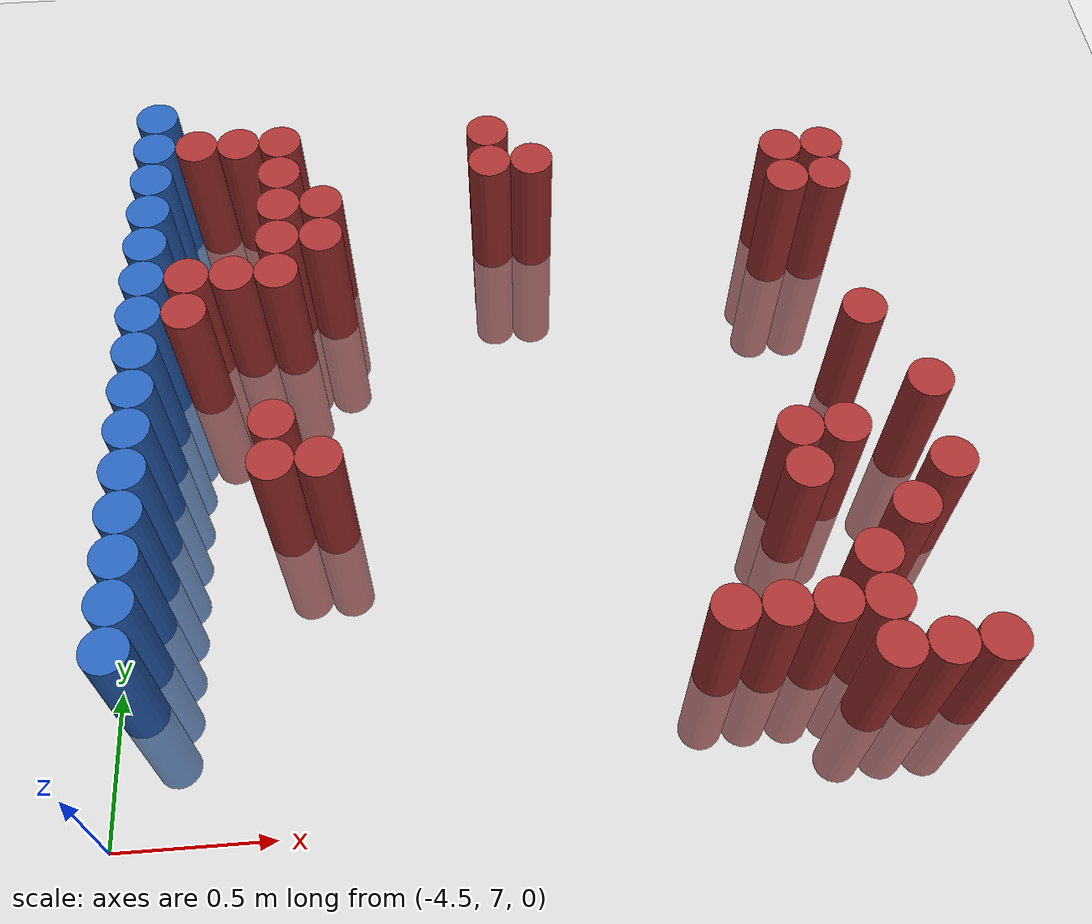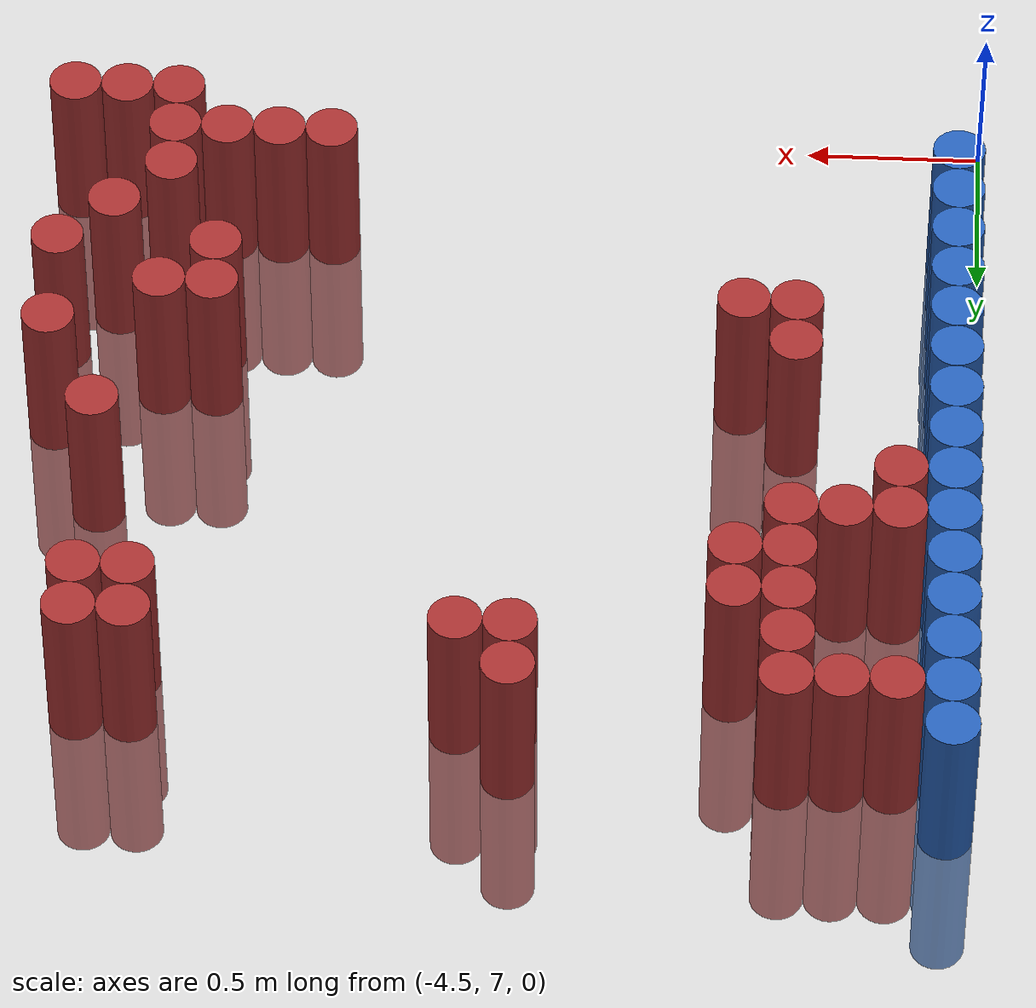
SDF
<sdf version="1.6">
 <world name="default">
  <model name="ground_plane">
   <static>1</static>
   <link name="link">
    <collision name="collision">
     <geometry><plane><normal>0 0 1</normal><size>100 100</size></plane></geometry>
     <surface><friction><ode><mu>100</mu><mu2>50</mu2></ode></friction></surface>
    </collision>
    <visual name="visual">
     <cast_shadows>0</cast_shadows>
     <geometry><plane><normal>0 0 1</normal><size>100 100</size></plane></geometry>
     <material>
      <script><uri>file://media/materials/scripts/gazebo.material</uri><name>Gazebo/Grey</name></script>
     </material>
    </visual>
   </link>
  </model>
  <model name="unit_cylinder_111">
   <static>1</static>
   <pose>-4.425000 7.425000 0.000000 0.000000 0.000000 0.000000</pose>
   <link name="link">
    <inertial>
     <mass>1</mass>
     <inertia><ixx>0.145833</ixx><ixy>0</ixy><ixz>0</ixz><iyy>0.145833</iyy><iyz>0</iyz><izz>0.125</izz></inertia>
    </inertial>
    <collision name="collision">
     <geometry><cylinder><radius>0.075000</radius><length>1</length></cylinder></geometry>
    </collision>
    <visual name="visual">
     <geometry><cylinder><radius>0.075000</radius><length>1</length></cylinder></geometry>
     <material>
      <ambient>0.152000 0.379000 0.720000 1</ambient>
      <diffuse>0.152000 0.379000 0.720000 1</diffuse>
     </material>
     <material>
      <script><name>Gazebo/Grey</name><uri>file://media/materials/scripts/gazebo.material</uri></script>
     </material>
    </visual>
   </link>
  </model>
  <model name="unit_cylinder_112">
   <static>1</static>
   <pose>-4.425000 7.575000 0.000000 0.000000 0.000000 0.000000</pose>
   <link name="link">
    <inertial>
     <mass>1</mass>
     <inertia><ixx>0.145833</ixx><ixy>0</ixy><ixz>0</ixz><iyy>0.145833</iyy><iyz>0</iyz><izz>0.125</izz></inertia>
    </inertial>
    <collision name="collision">
     <geometry><cylinder><radius>0.075000</radius><length>1</length></cylinder></geometry>
    </collision>
    <visual name="visual">
     <geometry><cylinder><radius>0.075000</radius><length>1</length></cylinder></geometry>
     <material>
      <ambient>0.152000 0.379000 0.720000 1</ambient>
      <diffuse>0.152000 0.379000 0.720000 1</diffuse>
     </material>
     <material>
      <script><name>Gazebo/Grey</name><uri>file://media/materials/scripts/gazebo.material</uri></script>
     </material>
    </visual>
   </link>
  </model>
  <model name="unit_cylinder_113">
   <static>1</static>
   <pose>-4.425000 7.725000 0.000000 0.000000 0.000000 0.000000</pose>
   <link name="link">
    <inertial>
     <mass>1</mass>
     <inertia><ixx>0.145833</ixx><ixy>0</ixy><ixz>0</ixz><iyy>0.145833</iyy><iyz>0</iyz><izz>0.125</izz></inertia>
    </inertial>
    <collision name="collision">
     <geometry><cylinder><radius>0.075000</radius><length>1</length></cylinder></geometry>
    </collision>
    <visual name="visual">
     <geometry><cylinder><radius>0.075000</radius><length>1</length></cylinder></geometry>
     <material>
      <ambient>0.152000 0.379000 0.720000 1</ambient>
      <diffuse>0.152000 0.379000 0.720000 1</diffuse>
     </material>
     <material>
      <script><name>Gazebo/Grey</name><uri>file://media/materials/scripts/gazebo.material</uri></script>
     </material>
    </visual>
   </link>
  </model>
  <model name="unit_cylinder_114">
   <static>1</static>
   <pose>-4.425000 7.875000 0.000000 0.000000 0.000000 0.000000</pose>
   <link name="link">
    <inertial>
     <mass>1</mass>
     <inertia><ixx>0.145833</ixx><ixy>0</ixy><ixz>0</ixz><iyy>0.145833</iyy><iyz>0</iyz><izz>0.125</izz></inertia>
    </inertial>
    <collision name="collision">
     <geometry><cylinder><radius>0.075000</radius><length>1</length></cylinder></geometry>
    </collision>
    <visual name="visual">
     <geometry><cylinder><radius>0.075000</radius><length>1</length></cylinder></geometry>
     <material>
      <ambient>0.152000 0.379000 0.720000 1</ambient>
      <diffuse>0.152000 0.379000 0.720000 1</diffuse>
     </material>
     <material>
      <script><name>Gazebo/Grey</name><uri>file://media/materials/scripts/gazebo.material</uri></script>
     </material>
    </visual>
   </link>
  </model>
  <model name="unit_cylinder_115">
   <static>1</static>
   <pose>-4.425000 8.025000 0.000000 0.000000 0.000000 0.000000</pose>
   <link name="link">
    <inertial>
     <mass>1</mass>
     <inertia><ixx>0.145833</ixx><ixy>0</ixy><ixz>0</ixz><iyy>0.145833</iyy><iyz>0</iyz><izz>0.125</izz></inertia>
    </inertial>
    <collision name="collision">
     <geometry><cylinder><radius>0.075000</radius><length>1</length></cylinder></geometry>
    </collision>
    <visual name="visual">
     <geometry><cylinder><radius>0.075000</radius><length>1</length></cylinder></geometry>
     <material>
      <ambient>0.152000 0.379000 0.720000 1</ambient>
      <diffuse>0.152000 0.379000 0.720000 1</diffuse>
     </material>
     <material>
      <script><name>Gazebo/Grey</name><uri>file://media/materials/scripts/gazebo.material</uri></script>
     </material>
    </visual>
   </link>
  </model>
  <model name="unit_cylinder_116">
   <static>1</static>
   <pose>-4.425000 8.175000 0.000000 0.000000 0.000000 0.000000</pose>
   <link name="link">
    <inertial>
     <mass>1</mass>
     <inertia><ixx>0.145833</ixx><ixy>0</ixy><ixz>0</ixz><iyy>0.145833</iyy><iyz>0</iyz><izz>0.125</izz></inertia>
    </inertial>
    <collision name="collision">
     <geometry><cylinder><radius>0.075000</radius><length>1</length></cylinder></geometry>
    </collision>
    <visual name="visual">
     <geometry><cylinder><radius>0.075000</radius><length>1</length></cylinder></geometry>
     <material>
      <ambient>0.152000 0.379000 0.720000 1</ambient>
      <diffuse>0.152000 0.379000 0.720000 1</diffuse>
     </material>
     <material>
      <script><name>Gazebo/Grey</name><uri>file://media/materials/scripts/gazebo.material</uri></script>
     </material>
    </visual>
   </link>
  </model>
  <model name="unit_cylinder_117">
   <static>1</static>
   <pose>-4.425000 8.325000 0.000000 0.000000 0.000000 0.000000</pose>
   <link name="link">
    <inertial>
     <mass>1</mass>
     <inertia><ixx>0.145833</ixx><ixy>0</ixy><ixz>0</ixz><iyy>0.145833</iyy><iyz>0</iyz><izz>0.125</izz></inertia>
    </inertial>
    <collision name="collision">
     <geometry><cylinder><radius>0.075000</radius><length>1</length></cylinder></geometry>
    </collision>
    <visual name="visual">
     <geometry><cylinder><radius>0.075000</radius><length>1</length></cylinder></geometry>
     <material>
      <ambient>0.152000 0.379000 0.720000 1</ambient>
      <diffuse>0.152000 0.379000 0.720000 1</diffuse>
     </material>
     <material>
      <script><name>Gazebo/Grey</name><uri>file://media/materials/scripts/gazebo.material</uri></script>
     </material>
    </visual>
   </link>
  </model>
  <model name="unit_cylinder_118">
   <static>1</static>
   <pose>-4.425000 8.475000 0.000000 0.000000 0.000000 0.000000</pose>
   <link name="link">
    <inertial>
     <mass>1</mass>
     <inertia><ixx>0.145833</ixx><ixy>0</ixy><ixz>0</ixz><iyy>0.145833</iyy><iyz>0</iyz><izz>0.125</izz></inertia>
    </inertial>
    <collision name="collision">
     <geometry><cylinder><radius>0.075000</radius><length>1</length></cylinder></geometry>
    </collision>
    <visual name="visual">
     <geometry><cylinder><radius>0.075000</radius><length>1</length></cylinder></geometry>
     <material>
      <ambient>0.152000 0.379000 0.720000 1</ambient>
      <diffuse>0.152000 0.379000 0.720000 1</diffuse>
     </material>
     <material>
      <script><name>Gazebo/Grey</name><uri>file://media/materials/scripts/gazebo.material</uri></script>
     </material>
    </visual>
   </link>
  </model>
  <model name="unit_cylinder_119">
   <static>1</static>
   <pose>-4.425000 8.625000 0.000000 0.000000 0.000000 0.000000</pose>
   <link name="link">
    <inertial>
     <mass>1</mass>
     <inertia><ixx>0.145833</ixx><ixy>0</ixy><ixz>0</ixz><iyy>0.145833</iyy><iyz>0</iyz><izz>0.125</izz></inertia>
    </inertial>
    <collision name="collision">
     <geometry><cylinder><radius>0.075000</radius><length>1</length></cylinder></geometry>
    </collision>
    <visual name="visual">
     <geometry><cylinder><radius>0.075000</radius><length>1</length></cylinder></geometry>
     <material>
      <ambient>0.152000 0.379000 0.720000 1</ambient>
      <diffuse>0.152000 0.379000 0.720000 1</diffuse>
     </material>
     <material>
      <script><name>Gazebo/Grey</name><uri>file://media/materials/scripts/gazebo.material</uri></script>
     </material>
    </visual>
   </link>
  </model>
  <model name="unit_cylinder_120">
   <static>1</static>
   <pose>-4.425000 8.775000 0.000000 0.000000 0.000000 0.000000</pose>
   <link name="link">
    <inertial>
     <mass>1</mass>
     <inertia><ixx>0.145833</ixx><ixy>0</ixy><ixz>0</ixz><iyy>0.145833</iyy><iyz>0</iyz><izz>0.125</izz></inertia>
    </inertial>
    <collision name="collision">
     <geometry><cylinder><radius>0.075000</radius><length>1</length></cylinder></geometry>
    </collision>
    <visual name="visual">
     <geometry><cylinder><radius>0.075000</radius><length>1</length></cylinder></geometry>
     <material>
      <ambient>0.152000 0.379000 0.720000 1</ambient>
      <diffuse>0.152000 0.379000 0.720000 1</diffuse>
     </material>
     <material>
      <script><name>Gazebo/Grey</name><uri>file://media/materials/scripts/gazebo.material</uri></script>
     </material>
    </visual>
   </link>
  </model>
  <model name="unit_cylinder_121">
   <static>1</static>
   <pose>-4.425000 8.925000 0.000000 0.000000 0.000000 0.000000</pose>
   <link name="link">
    <inertial>
     <mass>1</mass>
     <inertia><ixx>0.145833</ixx><ixy>0</ixy><ixz>0</ixz><iyy>0.145833</iyy><iyz>0</iyz><izz>0.125</izz></inertia>
    </inertial>
    <collision name="collision">
     <geometry><cylinder><radius>0.075000</radius><length>1</length></cylinder></geometry>
    </collision>
    <visual name="visual">
     <geometry><cylinder><radius>0.075000</radius><length>1</length></cylinder></geometry>
     <material>
      <ambient>0.152000 0.379000 0.720000 1</ambient>
      <diffuse>0.152000 0.379000 0.720000 1</diffuse>
     </material>
     <material>
      <script><name>Gazebo/Grey</name><uri>file://media/materials/scripts/gazebo.material</uri></script>
     </material>
    </visual>
   </link>
  </model>
  <model name="unit_cylinder_122">
   <static>1</static>
   <pose>-4.425000 9.075000 0.000000 0.000000 0.000000 0.000000</pose>
   <link name="link">
    <inertial>
     <mass>1</mass>
     <inertia><ixx>0.145833</ixx><ixy>0</ixy><ixz>0</ixz><iyy>0.145833</iyy><iyz>0</iyz><izz>0.125</izz></inertia>
    </inertial>
    <collision name="collision">
     <geometry><cylinder><radius>0.075000</radius><length>1</length></cylinder></geometry>
    </collision>
    <visual name="visual">
     <geometry><cylinder><radius>0.075000</radius><length>1</length></cylinder></geometry>
     <material>
      <ambient>0.152000 0.379000 0.720000 1</ambient>
      <diffuse>0.152000 0.379000 0.720000 1</diffuse>
     </material>
     <material>
      <script><name>Gazebo/Grey</name><uri>file://media/materials/scripts/gazebo.material</uri></script>
     </material>
    </visual>
   </link>
  </model>
  <model name="unit_cylinder_123">
   <static>1</static>
   <pose>-4.425000 9.225000 0.000000 0.000000 0.000000 0.000000</pose>
   <link name="link">
    <inertial>
     <mass>1</mass>
     <inertia><ixx>0.145833</ixx><ixy>0</ixy><ixz>0</ixz><iyy>0.145833</iyy><iyz>0</iyz><izz>0.125</izz></inertia>
    </inertial>
    <collision name="collision">
     <geometry><cylinder><radius>0.075000</radius><length>1</length></cylinder></geometry>
    </collision>
    <visual name="visual">
     <geometry><cylinder><radius>0.075000</radius><length>1</length></cylinder></geometry>
     <material>
      <ambient>0.152000 0.379000 0.720000 1</ambient>
      <diffuse>0.152000 0.379000 0.720000 1</diffuse>
     </material>
     <material>
      <script><name>Gazebo/Grey</name><uri>file://media/materials/scripts/gazebo.material</uri></script>
     </material>
    </visual>
   </link>
  </model>
  <model name="unit_cylinder_124">
   <static>1</static>
   <pose>-4.425000 9.375000 0.000000 0.000000 0.000000 0.000000</pose>
   <link name="link">
    <inertial>
     <mass>1</mass>
     <inertia><ixx>0.145833</ixx><ixy>0</ixy><ixz>0</ixz><iyy>0.145833</iyy><iyz>0</iyz><izz>0.125</izz></inertia>
    </inertial>
    <collision name="collision">
     <geometry><cylinder><radius>0.075000</radius><length>1</length></cylinder></geometry>
    </collision>
    <visual name="visual">
     <geometry><cylinder><radius>0.075000</radius><length>1</length></cylinder></geometry>
     <material>
      <ambient>0.152000 0.379000 0.720000 1</ambient>
      <diffuse>0.152000 0.379000 0.720000 1</diffuse>
     </material>
     <material>
      <script><name>Gazebo/Grey</name><uri>file://media/materials/scripts/gazebo.material</uri></script>
     </material>
    </visual>
   </link>
  </model>
  <model name="unit_cylinder_125">
   <static>1</static>
   <pose>-4.425000 9.525000 0.000000 0.000000 0.000000 0.000000</pose>
   <link name="link">
    <inertial>
     <mass>1</mass>
     <inertia><ixx>0.145833</ixx><ixy>0</ixy><ixz>0</ixz><iyy>0.145833</iyy><iyz>0</iyz><izz>0.125</izz></inertia>
    </inertial>
    <collision name="collision">
     <geometry><cylinder><radius>0.075000</radius><length>1</length></cylinder></geometry>
    </collision>
    <visual name="visual">
     <geometry><cylinder><radius>0.075000</radius><length>1</length></cylinder></geometry>
     <material>
      <ambient>0.152000 0.379000 0.720000 1</ambient>
      <diffuse>0.152000 0.379000 0.720000 1</diffuse>
     </material>
     <material>
      <script><name>Gazebo/Grey</name><uri>file://media/materials/scripts/gazebo.material</uri></script>
     </material>
    </visual>
   </link>
  </model>
  <model name="unit_cylinder_135">
   <static>1</static>
   <pose>-4.275000 8.625000 0.000000 0.000000 0.000000 0.000000</pose>
   <link name="link">
    <inertial>
     <mass>1</mass>
     <inertia><ixx>0.145833</ixx><ixy>0</ixy><ixz>0</ixz><iyy>0.145833</iyy><iyz>0</iyz><izz>0.125</izz></inertia>
    </inertial>
    <collision name="collision">
     <geometry><cylinder><radius>0.075000</radius><length>1</length></cylinder></geometry>
    </collision>
    <visual name="visual">
     <geometry><cylinder><radius>0.075000</radius><length>1</length></cylinder></geometry>
     <material>
      <ambient>0.648000 0.192000 0.192000 1</ambient>
      <diffuse>0.648000 0.192000 0.192000 1</diffuse>
     </material>
     <material>
      <script><name>Gazebo/Grey</name><uri>file://media/materials/scripts/gazebo.material</uri></script>
     </material>
    </visual>
   </link>
  </model>
  <model name="unit_cylinder_136">
   <static>1</static>
   <pose>-4.275000 8.775000 0.000000 0.000000 0.000000 0.000000</pose>
   <link name="link">
    <inertial>
     <mass>1</mass>
     <inertia><ixx>0.145833</ixx><ixy>0</ixy><ixz>0</ixz><iyy>0.145833</iyy><iyz>0</iyz><izz>0.125</izz></inertia>
    </inertial>
    <collision name="collision">
     <geometry><cylinder><radius>0.075000</radius><length>1</length></cylinder></geometry>
    </collision>
    <visual name="visual">
     <geometry><cylinder><radius>0.075000</radius><length>1</length></cylinder></geometry>
     <material>
      <ambient>0.648000 0.192000 0.192000 1</ambient>
      <diffuse>0.648000 0.192000 0.192000 1</diffuse>
     </material>
     <material>
      <script><name>Gazebo/Grey</name><uri>file://media/materials/scripts/gazebo.material</uri></script>
     </material>
    </visual>
   </link>
  </model>
  <model name="unit_cylinder_137">
   <static>1</static>
   <pose>-4.275000 9.375000 0.000000 0.000000 0.000000 0.000000</pose>
   <link name="link">
    <inertial>
     <mass>1</mass>
     <inertia><ixx>0.145833</ixx><ixy>0</ixy><ixz>0</ixz><iyy>0.145833</iyy><iyz>0</iyz><izz>0.125</izz></inertia>
    </inertial>
    <collision name="collision">
     <geometry><cylinder><radius>0.075000</radius><length>1</length></cylinder></geometry>
    </collision>
    <visual name="visual">
     <geometry><cylinder><radius>0.075000</radius><length>1</length></cylinder></geometry>
     <material>
      <ambient>0.648000 0.192000 0.192000 1</ambient>
      <diffuse>0.648000 0.192000 0.192000 1</diffuse>
     </material>
     <material>
      <script><name>Gazebo/Grey</name><uri>file://media/materials/scripts/gazebo.material</uri></script>
     </material>
    </visual>
   </link>
  </model>
  <model name="unit_cylinder_142">
   <static>1</static>
   <pose>-4.125000 8.775000 0.000000 0.000000 0.000000 0.000000</pose>
   <link name="link">
    <inertial>
     <mass>1</mass>
     <inertia><ixx>0.145833</ixx><ixy>0</ixy><ixz>0</ixz><iyy>0.145833</iyy><iyz>0</iyz><izz>0.125</izz></inertia>
    </inertial>
    <collision name="collision">
     <geometry><cylinder><radius>0.075000</radius><length>1</length></cylinder></geometry>
    </collision>
    <visual name="visual">
     <geometry><cylinder><radius>0.075000</radius><length>1</length></cylinder></geometry>
     <material>
      <ambient>0.648000 0.192000 0.192000 1</ambient>
      <diffuse>0.648000 0.192000 0.192000 1</diffuse>
     </material>
     <material>
      <script><name>Gazebo/Grey</name><uri>file://media/materials/scripts/gazebo.material</uri></script>
     </material>
    </visual>
   </link>
  </model>
  <model name="unit_cylinder_143">
   <static>1</static>
   <pose>-4.125000 9.375000 0.000000 0.000000 0.000000 0.000000</pose>
   <link name="link">
    <inertial>
     <mass>1</mass>
     <inertia><ixx>0.145833</ixx><ixy>0</ixy><ixz>0</ixz><iyy>0.145833</iyy><iyz>0</iyz><izz>0.125</izz></inertia>
    </inertial>
    <collision name="collision">
     <geometry><cylinder><radius>0.075000</radius><length>1</length></cylinder></geometry>
    </collision>
    <visual name="visual">
     <geometry><cylinder><radius>0.075000</radius><length>1</length></cylinder></geometry>
     <material>
      <ambient>0.648000 0.192000 0.192000 1</ambient>
      <diffuse>0.648000 0.192000 0.192000 1</diffuse>
     </material>
     <material>
      <script><name>Gazebo/Grey</name><uri>file://media/materials/scripts/gazebo.material</uri></script>
     </material>
    </visual>
   </link>
  </model>
  <model name="unit_cylinder_147">
   <static>1</static>
   <pose>-3.975000 8.025000 0.000000 0.000000 0.000000 0.000000</pose>
   <link name="link">
    <inertial>
     <mass>1</mass>
     <inertia><ixx>0.145833</ixx><ixy>0</ixy><ixz>0</ixz><iyy>0.145833</iyy><iyz>0</iyz><izz>0.125</izz></inertia>
    </inertial>
    <collision name="collision">
     <geometry><cylinder><radius>0.075000</radius><length>1</length></cylinder></geometry>
    </collision>
    <visual name="visual">
     <geometry><cylinder><radius>0.075000</radius><length>1</length></cylinder></geometry>
     <material>
      <ambient>0.648000 0.192000 0.192000 1</ambient>
      <diffuse>0.648000 0.192000 0.192000 1</diffuse>
     </material>
     <material>
      <script><name>Gazebo/Grey</name><uri>file://media/materials/scripts/gazebo.material</uri></script>
     </material>
    </visual>
   </link>
  </model>
  <model name="unit_cylinder_148">
   <static>1</static>
   <pose>-3.975000 8.175000 0.000000 0.000000 0.000000 0.000000</pose>
   <link name="link">
    <inertial>
     <mass>1</mass>
     <inertia><ixx>0.145833</ixx><ixy>0</ixy><ixz>0</ixz><iyy>0.145833</iyy><iyz>0</iyz><izz>0.125</izz></inertia>
    </inertial>
    <collision name="collision">
     <geometry><cylinder><radius>0.075000</radius><length>1</length></cylinder></geometry>
    </collision>
    <visual name="visual">
     <geometry><cylinder><radius>0.075000</radius><length>1</length></cylinder></geometry>
     <material>
      <ambient>0.648000 0.192000 0.192000 1</ambient>
      <diffuse>0.648000 0.192000 0.192000 1</diffuse>
     </material>
     <material>
      <script><name>Gazebo/Grey</name><uri>file://media/materials/scripts/gazebo.material</uri></script>
     </material>
    </visual>
   </link>
  </model>
  <model name="unit_cylinder_149">
   <static>1</static>
   <pose>-3.975000 8.775000 0.000000 0.000000 0.000000 0.000000</pose>
   <link name="link">
    <inertial>
     <mass>1</mass>
     <inertia><ixx>0.145833</ixx><ixy>0</ixy><ixz>0</ixz><iyy>0.145833</iyy><iyz>0</iyz><izz>0.125</izz></inertia>
    </inertial>
    <collision name="collision">
     <geometry><cylinder><radius>0.075000</radius><length>1</length></cylinder></geometry>
    </collision>
    <visual name="visual">
     <geometry><cylinder><radius>0.075000</radius><length>1</length></cylinder></geometry>
     <material>
      <ambient>0.648000 0.192000 0.192000 1</ambient>
      <diffuse>0.648000 0.192000 0.192000 1</diffuse>
     </material>
     <material>
      <script><name>Gazebo/Grey</name><uri>file://media/materials/scripts/gazebo.material</uri></script>
     </material>
    </visual>
   </link>
  </model>
  <model name="unit_cylinder_150">
   <static>1</static>
   <pose>-3.975000 8.925000 0.000000 0.000000 0.000000 0.000000</pose>
   <link name="link">
    <inertial>
     <mass>1</mass>
     <inertia><ixx>0.145833</ixx><ixy>0</ixy><ixz>0</ixz><iyy>0.145833</iyy><iyz>0</iyz><izz>0.125</izz></inertia>
    </inertial>
    <collision name="collision">
     <geometry><cylinder><radius>0.075000</radius><length>1</length></cylinder></geometry>
    </collision>
    <visual name="visual">
     <geometry><cylinder><radius>0.075000</radius><length>1</length></cylinder></geometry>
     <material>
      <ambient>0.648000 0.192000 0.192000 1</ambient>
      <diffuse>0.648000 0.192000 0.192000 1</diffuse>
     </material>
     <material>
      <script><name>Gazebo/Grey</name><uri>file://media/materials/scripts/gazebo.material</uri></script>
     </material>
    </visual>
   </link>
  </model>
  <model name="unit_cylinder_151">
   <static>1</static>
   <pose>-3.975000 9.075000 0.000000 0.000000 0.000000 0.000000</pose>
   <link name="link">
    <inertial>
     <mass>1</mass>
     <inertia><ixx>0.145833</ixx><ixy>0</ixy><ixz>0</ixz><iyy>0.145833</iyy><iyz>0</iyz><izz>0.125</izz></inertia>
    </inertial>
    <collision name="collision">
     <geometry><cylinder><radius>0.075000</radius><length>1</length></cylinder></geometry>
    </collision>
    <visual name="visual">
     <geometry><cylinder><radius>0.075000</radius><length>1</length></cylinder></geometry>
     <material>
      <ambient>0.648000 0.192000 0.192000 1</ambient>
      <diffuse>0.648000 0.192000 0.192000 1</diffuse>
     </material>
     <material>
      <script><name>Gazebo/Grey</name><uri>file://media/materials/scripts/gazebo.material</uri></script>
     </material>
    </visual>
   </link>
  </model>
  <model name="unit_cylinder_152">
   <static>1</static>
   <pose>-3.975000 9.225000 0.000000 0.000000 0.000000 0.000000</pose>
   <link name="link">
    <inertial>
     <mass>1</mass>
     <inertia><ixx>0.145833</ixx><ixy>0</ixy><ixz>0</ixz><iyy>0.145833</iyy><iyz>0</iyz><izz>0.125</izz></inertia>
    </inertial>
    <collision name="collision">
     <geometry><cylinder><radius>0.075000</radius><length>1</length></cylinder></geometry>
    </collision>
    <visual name="visual">
     <geometry><cylinder><radius>0.075000</radius><length>1</length></cylinder></geometry>
     <material>
      <ambient>0.648000 0.192000 0.192000 1</ambient>
      <diffuse>0.648000 0.192000 0.192000 1</diffuse>
     </material>
     <material>
      <script><name>Gazebo/Grey</name><uri>file://media/materials/scripts/gazebo.material</uri></script>
     </material>
    </visual>
   </link>
  </model>
  <model name="unit_cylinder_153">
   <static>1</static>
   <pose>-3.975000 9.375000 0.000000 0.000000 0.000000 0.000000</pose>
   <link name="link">
    <inertial>
     <mass>1</mass>
     <inertia><ixx>0.145833</ixx><ixy>0</ixy><ixz>0</ixz><iyy>0.145833</iyy><iyz>0</iyz><izz>0.125</izz></inertia>
    </inertial>
    <collision name="collision">
     <geometry><cylinder><radius>0.075000</radius><length>1</length></cylinder></geometry>
    </collision>
    <visual name="visual">
     <geometry><cylinder><radius>0.075000</radius><length>1</length></cylinder></geometry>
     <material>
      <ambient>0.648000 0.192000 0.192000 1</ambient>
      <diffuse>0.648000 0.192000 0.192000 1</diffuse>
     </material>
     <material>
      <script><name>Gazebo/Grey</name><uri>file://media/materials/scripts/gazebo.material</uri></script>
     </material>
    </visual>
   </link>
  </model>
  <model name="unit_cylinder_154">
   <static>1</static>
   <pose>-3.825000 8.025000 0.000000 0.000000 0.000000 0.000000</pose>
   <link name="link">
    <inertial>
     <mass>1</mass>
     <inertia><ixx>0.145833</ixx><ixy>0</ixy><ixz>0</ixz><iyy>0.145833</iyy><iyz>0</iyz><izz>0.125</izz></inertia>
    </inertial>
    <collision name="collision">
     <geometry><cylinder><radius>0.075000</radius><length>1</length></cylinder></geometry>
    </collision>
    <visual name="visual">
     <geometry><cylinder><radius>0.075000</radius><length>1</length></cylinder></geometry>
     <material>
      <ambient>0.648000 0.192000 0.192000 1</ambient>
      <diffuse>0.648000 0.192000 0.192000 1</diffuse>
     </material>
     <material>
      <script><name>Gazebo/Grey</name><uri>file://media/materials/scripts/gazebo.material</uri></script>
     </material>
    </visual>
   </link>
  </model>
  <model name="unit_cylinder_155">
   <static>1</static>
   <pose>-3.825000 8.925000 0.000000 0.000000 0.000000 0.000000</pose>
   <link name="link">
    <inertial>
     <mass>1</mass>
     <inertia><ixx>0.145833</ixx><ixy>0</ixy><ixz>0</ixz><iyy>0.145833</iyy><iyz>0</iyz><izz>0.125</izz></inertia>
    </inertial>
    <collision name="collision">
     <geometry><cylinder><radius>0.075000</radius><length>1</length></cylinder></geometry>
    </collision>
    <visual name="visual">
     <geometry><cylinder><radius>0.075000</radius><length>1</length></cylinder></geometry>
     <material>
      <ambient>0.648000 0.192000 0.192000 1</ambient>
      <diffuse>0.648000 0.192000 0.192000 1</diffuse>
     </material>
     <material>
      <script><name>Gazebo/Grey</name><uri>file://media/materials/scripts/gazebo.material</uri></script>
     </material>
    </visual>
   </link>
  </model>
  <model name="unit_cylinder_156">
   <static>1</static>
   <pose>-3.825000 9.075000 0.000000 0.000000 0.000000 0.000000</pose>
   <link name="link">
    <inertial>
     <mass>1</mass>
     <inertia><ixx>0.145833</ixx><ixy>0</ixy><ixz>0</ixz><iyy>0.145833</iyy><iyz>0</iyz><izz>0.125</izz></inertia>
    </inertial>
    <collision name="collision">
     <geometry><cylinder><radius>0.075000</radius><length>1</length></cylinder></geometry>
    </collision>
    <visual name="visual">
     <geometry><cylinder><radius>0.075000</radius><length>1</length></cylinder></geometry>
     <material>
      <ambient>0.648000 0.192000 0.192000 1</ambient>
      <diffuse>0.648000 0.192000 0.192000 1</diffuse>
     </material>
     <material>
      <script><name>Gazebo/Grey</name><uri>file://media/materials/scripts/gazebo.material</uri></script>
     </material>
    </visual>
   </link>
  </model>
  <model name="unit_cylinder_159">
   <static>1</static>
   <pose>-3.225000 9.225000 0.000000 0.000000 0.000000 0.000000</pose>
   <link name="link">
    <inertial>
     <mass>1</mass>
     <inertia><ixx>0.145833</ixx><ixy>0</ixy><ixz>0</ixz><iyy>0.145833</iyy><iyz>0</iyz><izz>0.125</izz></inertia>
    </inertial>
    <collision name="collision">
     <geometry><cylinder><radius>0.075000</radius><length>1</length></cylinder></geometry>
    </collision>
    <visual name="visual">
     <geometry><cylinder><radius>0.075000</radius><length>1</length></cylinder></geometry>
     <material>
      <ambient>0.648000 0.192000 0.192000 1</ambient>
      <diffuse>0.648000 0.192000 0.192000 1</diffuse>
     </material>
     <material>
      <script><name>Gazebo/Grey</name><uri>file://media/materials/scripts/gazebo.material</uri></script>
     </material>
    </visual>
   </link>
  </model>
  <model name="unit_cylinder_160">
   <static>1</static>
   <pose>-3.225000 9.375000 0.000000 0.000000 0.000000 0.000000</pose>
   <link name="link">
    <inertial>
     <mass>1</mass>
     <inertia><ixx>0.145833</ixx><ixy>0</ixy><ixz>0</ixz><iyy>0.145833</iyy><iyz>0</iyz><izz>0.125</izz></inertia>
    </inertial>
    <collision name="collision">
     <geometry><cylinder><radius>0.075000</radius><length>1</length></cylinder></geometry>
    </collision>
    <visual name="visual">
     <geometry><cylinder><radius>0.075000</radius><length>1</length></cylinder></geometry>
     <material>
      <ambient>0.648000 0.192000 0.192000 1</ambient>
      <diffuse>0.648000 0.192000 0.192000 1</diffuse>
     </material>
     <material>
      <script><name>Gazebo/Grey</name><uri>file://media/materials/scripts/gazebo.material</uri></script>
     </material>
    </visual>
   </link>
  </model>
  <model name="unit_cylinder_163">
   <static>1</static>
   <pose>-3.075000 9.225000 0.000000 0.000000 0.000000 0.000000</pose>
   <link name="link">
    <inertial>
     <mass>1</mass>
     <inertia><ixx>0.145833</ixx><ixy>0</ixy><ixz>0</ixz><iyy>0.145833</iyy><iyz>0</iyz><izz>0.125</izz></inertia>
    </inertial>
    <collision name="collision">
     <geometry><cylinder><radius>0.075000</radius><length>1</length></cylinder></geometry>
    </collision>
    <visual name="visual">
     <geometry><cylinder><radius>0.075000</radius><length>1</length></cylinder></geometry>
     <material>
      <ambient>0.648000 0.192000 0.192000 1</ambient>
      <diffuse>0.648000 0.192000 0.192000 1</diffuse>
     </material>
     <material>
      <script><name>Gazebo/Grey</name><uri>file://media/materials/scripts/gazebo.material</uri></script>
     </material>
    </visual>
   </link>
  </model>
  <model name="unit_cylinder_178">
   <static>1</static>
   <pose>-2.625000 7.425000 0.000000 0.000000 0.000000 0.000000</pose>
   <link name="link">
    <inertial>
     <mass>1</mass>
     <inertia><ixx>0.145833</ixx><ixy>0</ixy><ixz>0</ixz><iyy>0.145833</iyy><iyz>0</iyz><izz>0.125</izz></inertia>
    </inertial>
    <collision name="collision">
     <geometry><cylinder><radius>0.075000</radius><length>1</length></cylinder></geometry>
    </collision>
    <visual name="visual">
     <geometry><cylinder><radius>0.075000</radius><length>1</length></cylinder></geometry>
     <material>
      <ambient>0.648000 0.192000 0.192000 1</ambient>
      <diffuse>0.648000 0.192000 0.192000 1</diffuse>
     </material>
     <material>
      <script><name>Gazebo/Grey</name><uri>file://media/materials/scripts/gazebo.material</uri></script>
     </material>
    </visual>
   </link>
  </model>
  <model name="unit_cylinder_188">
   <static>1</static>
   <pose>-2.475000 7.425000 0.000000 0.000000 0.000000 0.000000</pose>
   <link name="link">
    <inertial>
     <mass>1</mass>
     <inertia><ixx>0.145833</ixx><ixy>0</ixy><ixz>0</ixz><iyy>0.145833</iyy><iyz>0</iyz><izz>0.125</izz></inertia>
    </inertial>
    <collision name="collision">
     <geometry><cylinder><radius>0.075000</radius><length>1</length></cylinder></geometry>
    </collision>
    <visual name="visual">
     <geometry><cylinder><radius>0.075000</radius><length>1</length></cylinder></geometry>
     <material>
      <ambient>0.648000 0.192000 0.192000 1</ambient>
      <diffuse>0.648000 0.192000 0.192000 1</diffuse>
     </material>
     <material>
      <script><name>Gazebo/Grey</name><uri>file://media/materials/scripts/gazebo.material</uri></script>
     </material>
    </visual>
   </link>
  </model>
  <model name="unit_cylinder_196">
   <static>1</static>
   <pose>-2.325000 7.425000 0.000000 0.000000 0.000000 0.000000</pose>
   <link name="link">
    <inertial>
     <mass>1</mass>
     <inertia><ixx>0.145833</ixx><ixy>0</ixy><ixz>0</ixz><iyy>0.145833</iyy><iyz>0</iyz><izz>0.125</izz></inertia>
    </inertial>
    <collision name="collision">
     <geometry><cylinder><radius>0.075000</radius><length>1</length></cylinder></geometry>
    </collision>
    <visual name="visual">
     <geometry><cylinder><radius>0.075000</radius><length>1</length></cylinder></geometry>
     <material>
      <ambient>0.648000 0.192000 0.192000 1</ambient>
      <diffuse>0.648000 0.192000 0.192000 1</diffuse>
     </material>
     <material>
      <script><name>Gazebo/Grey</name><uri>file://media/materials/scripts/gazebo.material</uri></script>
     </material>
    </visual>
   </link>
  </model>
  <model name="unit_cylinder_197">
   <static>1</static>
   <pose>-2.325000 7.875000 0.000000 0.000000 0.000000 0.000000</pose>
   <link name="link">
    <inertial>
     <mass>1</mass>
     <inertia><ixx>0.145833</ixx><ixy>0</ixy><ixz>0</ixz><iyy>0.145833</iyy><iyz>0</iyz><izz>0.125</izz></inertia>
    </inertial>
    <collision name="collision">
     <geometry><cylinder><radius>0.075000</radius><length>1</length></cylinder></geometry>
    </collision>
    <visual name="visual">
     <geometry><cylinder><radius>0.075000</radius><length>1</length></cylinder></geometry>
     <material>
      <ambient>0.648000 0.192000 0.192000 1</ambient>
      <diffuse>0.648000 0.192000 0.192000 1</diffuse>
     </material>
     <material>
      <script><name>Gazebo/Grey</name><uri>file://media/materials/scripts/gazebo.material</uri></script>
     </material>
    </visual>
   </link>
  </model>
  <model name="unit_cylinder_198">
   <static>1</static>
   <pose>-2.325000 8.025000 0.000000 0.000000 0.000000 0.000000</pose>
   <link name="link">
    <inertial>
     <mass>1</mass>
     <inertia><ixx>0.145833</ixx><ixy>0</ixy><ixz>0</ixz><iyy>0.145833</iyy><iyz>0</iyz><izz>0.125</izz></inertia>
    </inertial>
    <collision name="collision">
     <geometry><cylinder><radius>0.075000</radius><length>1</length></cylinder></geometry>
    </collision>
    <visual name="visual">
     <geometry><cylinder><radius>0.075000</radius><length>1</length></cylinder></geometry>
     <material>
      <ambient>0.648000 0.192000 0.192000 1</ambient>
      <diffuse>0.648000 0.192000 0.192000 1</diffuse>
     </material>
     <material>
      <script><name>Gazebo/Grey</name><uri>file://media/materials/scripts/gazebo.material</uri></script>
     </material>
    </visual>
   </link>
  </model>
  <model name="unit_cylinder_204">
   <static>1</static>
   <pose>-2.175000 7.275000 0.000000 0.000000 0.000000 0.000000</pose>
   <link name="link">
    <inertial>
     <mass>1</mass>
     <inertia><ixx>0.145833</ixx><ixy>0</ixy><ixz>0</ixz><iyy>0.145833</iyy><iyz>0</iyz><izz>0.125</izz></inertia>
    </inertial>
    <collision name="collision">
     <geometry><cylinder><radius>0.075000</radius><length>1</length></cylinder></geometry>
    </collision>
    <visual name="visual">
     <geometry><cylinder><radius>0.075000</radius><length>1</length></cylinder></geometry>
     <material>
      <ambient>0.648000 0.192000 0.192000 1</ambient>
      <diffuse>0.648000 0.192000 0.192000 1</diffuse>
     </material>
     <material>
      <script><name>Gazebo/Grey</name><uri>file://media/materials/scripts/gazebo.material</uri></script>
     </material>
    </visual>
   </link>
  </model>
  <model name="unit_cylinder_205">
   <static>1</static>
   <pose>-2.175000 7.425000 0.000000 0.000000 0.000000 0.000000</pose>
   <link name="link">
    <inertial>
     <mass>1</mass>
     <inertia><ixx>0.145833</ixx><ixy>0</ixy><ixz>0</ixz><iyy>0.145833</iyy><iyz>0</iyz><izz>0.125</izz></inertia>
    </inertial>
    <collision name="collision">
     <geometry><cylinder><radius>0.075000</radius><length>1</length></cylinder></geometry>
    </collision>
    <visual name="visual">
     <geometry><cylinder><radius>0.075000</radius><length>1</length></cylinder></geometry>
     <material>
      <ambient>0.648000 0.192000 0.192000 1</ambient>
      <diffuse>0.648000 0.192000 0.192000 1</diffuse>
     </material>
     <material>
      <script><name>Gazebo/Grey</name><uri>file://media/materials/scripts/gazebo.material</uri></script>
     </material>
    </visual>
   </link>
  </model>
  <model name="unit_cylinder_206">
   <static>1</static>
   <pose>-2.175000 7.575000 0.000000 0.000000 0.000000 0.000000</pose>
   <link name="link">
    <inertial>
     <mass>1</mass>
     <inertia><ixx>0.145833</ixx><ixy>0</ixy><ixz>0</ixz><iyy>0.145833</iyy><iyz>0</iyz><izz>0.125</izz></inertia>
    </inertial>
    <collision name="collision">
     <geometry><cylinder><radius>0.075000</radius><length>1</length></cylinder></geometry>
    </collision>
    <visual name="visual">
     <geometry><cylinder><radius>0.075000</radius><length>1</length></cylinder></geometry>
     <material>
      <ambient>0.648000 0.192000 0.192000 1</ambient>
      <diffuse>0.648000 0.192000 0.192000 1</diffuse>
     </material>
     <material>
      <script><name>Gazebo/Grey</name><uri>file://media/materials/scripts/gazebo.material</uri></script>
     </material>
    </visual>
   </link>
  </model>
  <model name="unit_cylinder_207">
   <static>1</static>
   <pose>-2.175000 8.025000 0.000000 0.000000 0.000000 0.000000</pose>
   <link name="link">
    <inertial>
     <mass>1</mass>
     <inertia><ixx>0.145833</ixx><ixy>0</ixy><ixz>0</ixz><iyy>0.145833</iyy><iyz>0</iyz><izz>0.125</izz></inertia>
    </inertial>
    <collision name="collision">
     <geometry><cylinder><radius>0.075000</radius><length>1</length></cylinder></geometry>
    </collision>
    <visual name="visual">
     <geometry><cylinder><radius>0.075000</radius><length>1</length></cylinder></geometry>
     <material>
      <ambient>0.648000 0.192000 0.192000 1</ambient>
      <diffuse>0.648000 0.192000 0.192000 1</diffuse>
     </material>
     <material>
      <script><name>Gazebo/Grey</name><uri>file://media/materials/scripts/gazebo.material</uri></script>
     </material>
    </visual>
   </link>
  </model>
  <model name="unit_cylinder_208">
   <static>1</static>
   <pose>-2.175000 9.075000 0.000000 0.000000 0.000000 0.000000</pose>
   <link name="link">
    <inertial>
     <mass>1</mass>
     <inertia><ixx>0.145833</ixx><ixy>0</ixy><ixz>0</ixz><iyy>0.145833</iyy><iyz>0</iyz><izz>0.125</izz></inertia>
    </inertial>
    <collision name="collision">
     <geometry><cylinder><radius>0.075000</radius><length>1</length></cylinder></geometry>
    </collision>
    <visual name="visual">
     <geometry><cylinder><radius>0.075000</radius><length>1</length></cylinder></geometry>
     <material>
      <ambient>0.648000 0.192000 0.192000 1</ambient>
      <diffuse>0.648000 0.192000 0.192000 1</diffuse>
     </material>
     <material>
      <script><name>Gazebo/Grey</name><uri>file://media/materials/scripts/gazebo.material</uri></script>
     </material>
    </visual>
   </link>
  </model>
  <model name="unit_cylinder_209">
   <static>1</static>
   <pose>-2.175000 9.225000 0.000000 0.000000 0.000000 0.000000</pose>
   <link name="link">
    <inertial>
     <mass>1</mass>
     <inertia><ixx>0.145833</ixx><ixy>0</ixy><ixz>0</ixz><iyy>0.145833</iyy><iyz>0</iyz><izz>0.125</izz></inertia>
    </inertial>
    <collision name="collision">
     <geometry><cylinder><radius>0.075000</radius><length>1</length></cylinder></geometry>
    </collision>
    <visual name="visual">
     <geometry><cylinder><radius>0.075000</radius><length>1</length></cylinder></geometry>
     <material>
      <ambient>0.648000 0.192000 0.192000 1</ambient>
      <diffuse>0.648000 0.192000 0.192000 1</diffuse>
     </material>
     <material>
      <script><name>Gazebo/Grey</name><uri>file://media/materials/scripts/gazebo.material</uri></script>
     </material>
    </visual>
   </link>
  </model>
  <model name="unit_cylinder_220">
   <static>1</static>
   <pose>-2.025000 7.275000 0.000000 0.000000 0.000000 0.000000</pose>
   <link name="link">
    <inertial>
     <mass>1</mass>
     <inertia><ixx>0.145833</ixx><ixy>0</ixy><ixz>0</ixz><iyy>0.145833</iyy><iyz>0</iyz><izz>0.125</izz></inertia>
    </inertial>
    <collision name="collision">
     <geometry><cylinder><radius>0.075000</radius><length>1</length></cylinder></geometry>
    </collision>
    <visual name="visual">
     <geometry><cylinder><radius>0.075000</radius><length>1</length></cylinder></geometry>
     <material>
      <ambient>0.648000 0.192000 0.192000 1</ambient>
      <diffuse>0.648000 0.192000 0.192000 1</diffuse>
     </material>
     <material>
      <script><name>Gazebo/Grey</name><uri>file://media/materials/scripts/gazebo.material</uri></script>
     </material>
    </visual>
   </link>
  </model>
  <model name="unit_cylinder_221">
   <static>1</static>
   <pose>-2.025000 7.725000 0.000000 0.000000 0.000000 0.000000</pose>
   <link name="link">
    <inertial>
     <mass>1</mass>
     <inertia><ixx>0.145833</ixx><ixy>0</ixy><ixz>0</ixz><iyy>0.145833</iyy><iyz>0</iyz><izz>0.125</izz></inertia>
    </inertial>
    <collision name="collision">
     <geometry><cylinder><radius>0.075000</radius><length>1</length></cylinder></geometry>
    </collision>
    <visual name="visual">
     <geometry><cylinder><radius>0.075000</radius><length>1</length></cylinder></geometry>
     <material>
      <ambient>0.648000 0.192000 0.192000 1</ambient>
      <diffuse>0.648000 0.192000 0.192000 1</diffuse>
     </material>
     <material>
      <script><name>Gazebo/Grey</name><uri>file://media/materials/scripts/gazebo.material</uri></script>
     </material>
    </visual>
   </link>
  </model>
  <model name="unit_cylinder_222">
   <static>1</static>
   <pose>-2.025000 8.475000 0.000000 0.000000 0.000000 0.000000</pose>
   <link name="link">
    <inertial>
     <mass>1</mass>
     <inertia><ixx>0.145833</ixx><ixy>0</ixy><ixz>0</ixz><iyy>0.145833</iyy><iyz>0</iyz><izz>0.125</izz></inertia>
    </inertial>
    <collision name="collision">
     <geometry><cylinder><radius>0.075000</radius><length>1</length></cylinder></geometry>
    </collision>
    <visual name="visual">
     <geometry><cylinder><radius>0.075000</radius><length>1</length></cylinder></geometry>
     <material>
      <ambient>0.648000 0.192000 0.192000 1</ambient>
      <diffuse>0.648000 0.192000 0.192000 1</diffuse>
     </material>
     <material>
      <script><name>Gazebo/Grey</name><uri>file://media/materials/scripts/gazebo.material</uri></script>
     </material>
    </visual>
   </link>
  </model>
  <model name="unit_cylinder_223">
   <static>1</static>
   <pose>-2.025000 9.075000 0.000000 0.000000 0.000000 0.000000</pose>
   <link name="link">
    <inertial>
     <mass>1</mass>
     <inertia><ixx>0.145833</ixx><ixy>0</ixy><ixz>0</ixz><iyy>0.145833</iyy><iyz>0</iyz><izz>0.125</izz></inertia>
    </inertial>
    <collision name="collision">
     <geometry><cylinder><radius>0.075000</radius><length>1</length></cylinder></geometry>
    </collision>
    <visual name="visual">
     <geometry><cylinder><radius>0.075000</radius><length>1</length></cylinder></geometry>
     <material>
      <ambient>0.648000 0.192000 0.192000 1</ambient>
      <diffuse>0.648000 0.192000 0.192000 1</diffuse>
     </material>
     <material>
      <script><name>Gazebo/Grey</name><uri>file://media/materials/scripts/gazebo.material</uri></script>
     </material>
    </visual>
   </link>
  </model>
  <model name="unit_cylinder_224">
   <static>1</static>
   <pose>-2.025000 9.225000 0.000000 0.000000 0.000000 0.000000</pose>
   <link name="link">
    <inertial>
     <mass>1</mass>
     <inertia><ixx>0.145833</ixx><ixy>0</ixy><ixz>0</ixz><iyy>0.145833</iyy><iyz>0</iyz><izz>0.125</izz></inertia>
    </inertial>
    <collision name="collision">
     <geometry><cylinder><radius>0.075000</radius><length>1</length></cylinder></geometry>
    </collision>
    <visual name="visual">
     <geometry><cylinder><radius>0.075000</radius><length>1</length></cylinder></geometry>
     <material>
      <ambient>0.648000 0.192000 0.192000 1</ambient>
      <diffuse>0.648000 0.192000 0.192000 1</diffuse>
     </material>
     <material>
      <script><name>Gazebo/Grey</name><uri>file://media/materials/scripts/gazebo.material</uri></script>
     </material>
    </visual>
   </link>
  </model>
  <model name="unit_cylinder_229">
   <static>1</static>
   <pose>-1.875000 7.275000 0.000000 0.000000 0.000000 0.000000</pose>
   <link name="link">
    <inertial>
     <mass>1</mass>
     <inertia><ixx>0.145833</ixx><ixy>0</ixy><ixz>0</ixz><iyy>0.145833</iyy><iyz>0</iyz><izz>0.125</izz></inertia>
    </inertial>
    <collision name="collision">
     <geometry><cylinder><radius>0.075000</radius><length>1</length></cylinder></geometry>
    </collision>
    <visual name="visual">
     <geometry><cylinder><radius>0.075000</radius><length>1</length></cylinder></geometry>
     <material>
      <ambient>0.648000 0.192000 0.192000 1</ambient>
      <diffuse>0.648000 0.192000 0.192000 1</diffuse>
     </material>
     <material>
      <script><name>Gazebo/Grey</name><uri>file://media/materials/scripts/gazebo.material</uri></script>
     </material>
    </visual>
   </link>
  </model>
  <model name="unit_cylinder_230">
   <static>1</static>
   <pose>-1.875000 7.875000 0.000000 0.000000 0.000000 0.000000</pose>
   <link name="link">
    <inertial>
     <mass>1</mass>
     <inertia><ixx>0.145833</ixx><ixy>0</ixy><ixz>0</ixz><iyy>0.145833</iyy><iyz>0</iyz><izz>0.125</izz></inertia>
    </inertial>
    <collision name="collision">
     <geometry><cylinder><radius>0.075000</radius><length>1</length></cylinder></geometry>
    </collision>
    <visual name="visual">
     <geometry><cylinder><radius>0.075000</radius><length>1</length></cylinder></geometry>
     <material>
      <ambient>0.648000 0.192000 0.192000 1</ambient>
      <diffuse>0.648000 0.192000 0.192000 1</diffuse>
     </material>
     <material>
      <script><name>Gazebo/Grey</name><uri>file://media/materials/scripts/gazebo.material</uri></script>
     </material>
    </visual>
   </link>
  </model>
  <model name="unit_cylinder_231">
   <static>1</static>
   <pose>-1.875000 8.175000 0.000000 0.000000 0.000000 0.000000</pose>
   <link name="link">
    <inertial>
     <mass>1</mass>
     <inertia><ixx>0.145833</ixx><ixy>0</ixy><ixz>0</ixz><iyy>0.145833</iyy><iyz>0</iyz><izz>0.125</izz></inertia>
    </inertial>
    <collision name="collision">
     <geometry><cylinder><radius>0.075000</radius><length>1</length></cylinder></geometry>
    </collision>
    <visual name="visual">
     <geometry><cylinder><radius>0.075000</radius><length>1</length></cylinder></geometry>
     <material>
      <ambient>0.648000 0.192000 0.192000 1</ambient>
      <diffuse>0.648000 0.192000 0.192000 1</diffuse>
     </material>
     <material>
      <script><name>Gazebo/Grey</name><uri>file://media/materials/scripts/gazebo.material</uri></script>
     </material>
    </visual>
   </link>
  </model>
 </world>
</sdf>
